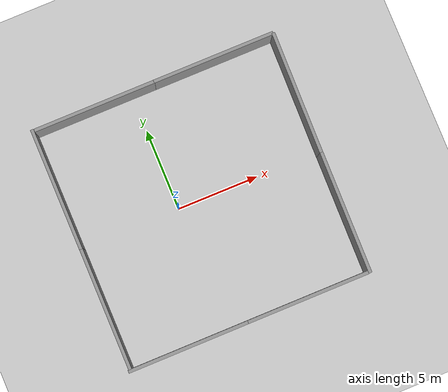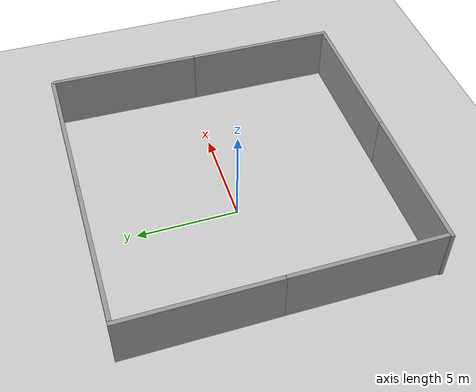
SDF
<sdf version="1.7">
 <world name="default">
  <light name="sun" type="directional">
   <pose>0 0 10 0 -0 0</pose>
   <diffuse>0.8 0.8 0.8 1</diffuse>
   <specular>0.2 0.2 0.2 1</specular>
   <attenuation>
    <range>1000</range>
    <constant>0.9</constant>
    <linear>0.01</linear>
    <quadratic>0.001</quadratic>
   </attenuation>
   <direction>-0.5 0.1 -0.9</direction>
   <spot><inner_angle>0</inner_angle><outer_angle>0</outer_angle><falloff>0</falloff></spot>
  </light>
  <model name="ground_plane">
   <static>1</static>
   <link name="link">
    <collision name="collision">
     <geometry><plane><normal>0 0 1</normal><size>100 100</size></plane></geometry>
     <surface><friction><ode><mu>100</mu><mu2>50</mu2></ode></friction></surface>
    </collision>
    <visual name="visual">
     <cast_shadows>0</cast_shadows>
     <geometry><plane><normal>0 0 1</normal><size>100 100</size></plane></geometry>
     <material>
      <script><uri>file://media/materials/scripts/gazebo.material</uri><name>Gazebo/Grey</name></script>
     </material>
    </visual>
   </link>
  </model>
  <gravity>0 0 -9.8</gravity>
  <magnetic_field>6e-06 2.3e-05 -4.2e-05</magnetic_field>
  <atmosphere type="adiabatic"/>
  <physics type="ode">
   <max_step_size>0.001</max_step_size>
   <real_time_factor>1</real_time_factor>
   <real_time_update_rate>1000</real_time_update_rate>
  </physics>
  <scene><ambient>0.4 0.4 0.4 1</ambient><background>0.7 0.7 0.7 1</background><shadows>1</shadows></scene>
  <audio><device>default</device></audio>
  <spherical_coordinates>
   <surface_model>EARTH_WGS84</surface_model>
   <latitude_deg>0</latitude_deg>
   <longitude_deg>0</longitude_deg>
   <elevation>0</elevation>
   <heading_deg>0</heading_deg>
  </spherical_coordinates>
  <model name="grey_wall">
   <static>1</static>
   <link name="link">
    <pose>0 0 1.4 0 -0 0</pose>
    <collision name="collision"><geometry><box><size>7.5 0.2 2.8</size></box></geometry></collision>
    <visual name="visual">
     <cast_shadows>0</cast_shadows>
     <geometry><box><size>7.5 0.2 2.8</size></box></geometry>
     <material>
      <script>
       <uri>model://grey_wall/materials/scripts</uri>
       <uri>model://grey_wall/materials/textures</uri>
       <name>vrc/grey_wall</name>
      </script>
     </material>
    </visual>
   </link>
   <pose>-2.2871 7.19486 0 0 -0 0</pose>
  </model>
  <model name="grey_wall_0">
   <static>1</static>
   <link name="link">
    <pose>0 0 1.4 0 -0 0</pose>
    <collision name="collision"><geometry><box><size>7.5 0.2 2.8</size></box></geometry></collision>
    <visual name="visual">
     <cast_shadows>0</cast_shadows>
     <geometry><box><size>7.5 0.2 2.8</size></box></geometry>
     <material>
      <script>
       <uri>model://grey_wall/materials/scripts</uri>
       <uri>model://grey_wall/materials/textures</uri>
       <name>vrc/grey_wall</name>
      </script>
     </material>
    </visual>
   </link>
   <pose>5.17786 7.19599 0 0 -0 0</pose>
  </model>
  <model name="grey_wall_1">
   <static>1</static>
   <link name="link">
    <pose>0 0 1.4 0 -0 0</pose>
    <collision name="collision"><geometry><box><size>7.5 0.2 2.8</size></box></geometry></collision>
    <visual name="visual">
     <cast_shadows>0</cast_shadows>
     <geometry><box><size>7.5 0.2 2.8</size></box></geometry>
     <material>
      <script>
       <uri>model://grey_wall/materials/scripts</uri>
       <uri>model://grey_wall/materials/textures</uri>
       <name>vrc/grey_wall</name>
      </script>
     </material>
    </visual>
   </link>
   <pose>8.86938 3.43847 0 0 0 -1.58675</pose>
  </model>
  <model name="grey_wall_2">
   <static>1</static>
   <link name="link">
    <pose>0 0 1.4 0 -0 0</pose>
    <collision name="collision"><geometry><box><size>7.5 0.2 2.8</size></box></geometry></collision>
    <visual name="visual">
     <cast_shadows>0</cast_shadows>
     <geometry><box><size>7.5 0.2 2.8</size></box></geometry>
     <material>
      <script>
       <uri>model://grey_wall/materials/scripts</uri>
       <uri>model://grey_wall/materials/textures</uri>
       <name>vrc/grey_wall</name>
      </script>
     </material>
    </visual>
   </link>
   <pose>8.771 -4.06352 0 0 0 -1.58248</pose>
  </model>
  <model name="grey_wall_3">
   <static>1</static>
   <link name="link">
    <pose>0 0 1.4 0 -0 0</pose>
    <collision name="collision"><geometry><box><size>7.5 0.2 2.8</size></box></geometry></collision>
    <visual name="visual">
     <cast_shadows>0</cast_shadows>
     <geometry><box><size>7.5 0.2 2.8</size></box></geometry>
     <material>
      <script>
       <uri>model://grey_wall/materials/scripts</uri>
       <uri>model://grey_wall/materials/textures</uri>
       <name>vrc/grey_wall</name>
      </script>
     </material>
    </visual>
   </link>
   <pose>4.88785 -7.73426 0 0 -0 0</pose>
  </model>
  <model name="grey_wall_4">
   <static>1</static>
   <link name="link">
    <pose>0 0 1.4 0 -0 0</pose>
    <collision name="collision"><geometry><box><size>7.5 0.2 2.8</size></box></geometry></collision>
    <visual name="visual">
     <cast_shadows>0</cast_shadows>
     <geometry><box><size>7.5 0.2 2.8</size></box></geometry>
     <material>
      <script>
       <uri>model://grey_wall/materials/scripts</uri>
       <uri>model://grey_wall/materials/textures</uri>
       <name>vrc/grey_wall</name>
      </script>
     </material>
    </visual>
   </link>
   <pose>-2.52549 -7.73543 0 0 -0 0</pose>
  </model>
  <model name="grey_wall_5">
   <static>1</static>
   <link name="link">
    <pose>0 0 1.4 0 -0 0</pose>
    <collision name="collision"><geometry><box><size>7.5 0.2 2.8</size></box></geometry></collision>
    <visual name="visual">
     <cast_shadows>0</cast_shadows>
     <geometry><box><size>7.5 0.2 2.8</size></box></geometry>
     <material>
      <script>
       <uri>model://grey_wall/materials/scripts</uri>
       <uri>model://grey_wall/materials/textures</uri>
       <name>vrc/grey_wall</name>
      </script>
     </material>
    </visual>
   </link>
   <pose>-6.14262 3.55242 0 0 0 -1.56903</pose>
  </model>
  <model name="grey_wall_6">
   <static>1</static>
   <link name="link">
    <pose>0 0 1.4 0 -0 0</pose>
    <collision name="collision"><geometry><box><size>7.5 0.2 2.8</size></box></geometry></collision>
    <visual name="visual">
     <cast_shadows>0</cast_shadows>
     <geometry><box><size>7.5 0.2 2.8</size></box></geometry>
     <material>
      <script>
       <uri>model://grey_wall/materials/scripts</uri>
       <uri>model://grey_wall/materials/textures</uri>
       <name>vrc/grey_wall</name>
      </script>
     </material>
    </visual>
   </link>
   <pose>-6.13136 -3.89864 0 0 0 -1.57074</pose>
  </model>
 </world>
</sdf>
